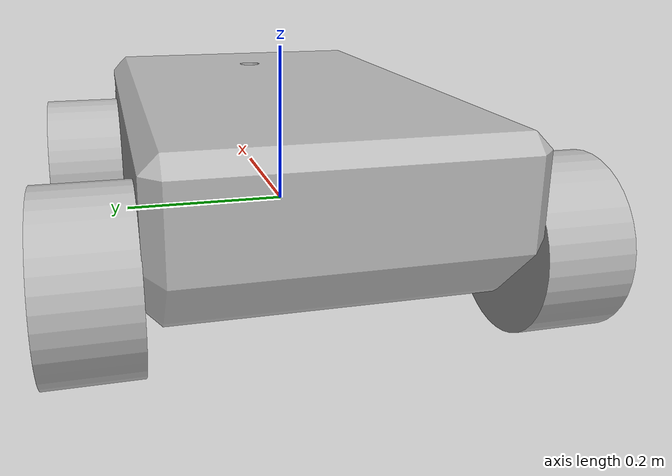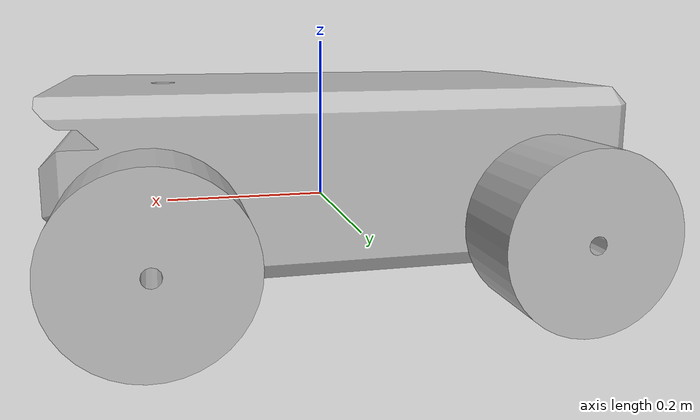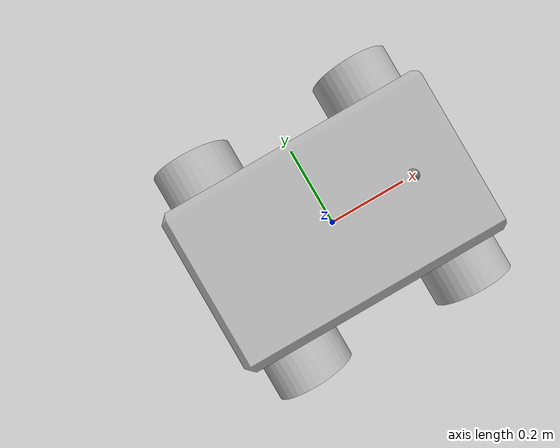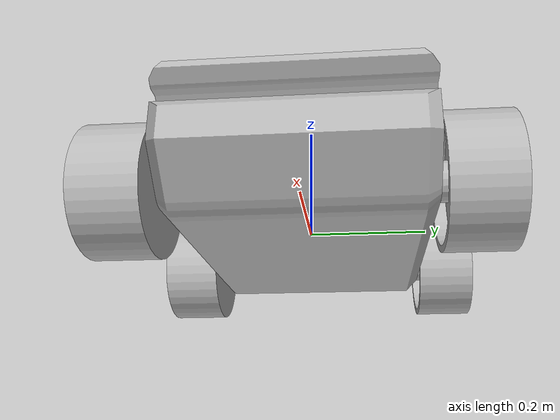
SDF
<sdf version='1.7'>
  <model name='robot_base'>
    <link name='base_link'>
      <inertial>
        <pose>0.003095 0 0.053305 0 -0 0</pose>
        <mass>47.873</mass>
        <inertia>
          <ixx>0.774277</ixx>
          <ixy>-1.03782e-10</ixy>
          <ixz>0.00763014</ixz>
          <iyy>1.64933</iyy>
          <iyz>1.09578e-12</iyz>
          <izz>2.12393</izz>
        </inertia>
      </inertial>
      <collision name='base_link_collision'>
        <pose>0 0 0 1.5708 -0 3.14</pose>
        <geometry>
          <mesh>
            <scale>1 1 1</scale>
            <uri>model://robot_description/meshes/robot_base.stl</uri>
          </mesh>
        </geometry>
      </collision>
      <visual name='base_link_visual'>
        <pose>0 0 0 1.5708 -0 3.14</pose>
        <geometry>
          <mesh>
            <scale>1 1 1</scale>
            <uri>model://robot_description/meshes/robot_base.stl</uri>
          </mesh>
        </geometry>
      </visual>
    </link>
    <joint name='front_left_wheel_joint' type='revolute'>
      <pose relative_to='base_link'>0.22 0.25 0 0 -0 0</pose>
      <parent>base_link</parent>
      <child>front_left_wheel</child>
      <axis>
        <xyz>0 1 0</xyz>
        <limit>
          <lower>-1e+16</lower>
          <upper>1e+16</upper>
        </limit>
        <dynamics>
          <spring_reference>0</spring_reference>
          <spring_stiffness>0</spring_stiffness>
        </dynamics>
      </axis>
    </joint>
    <link name='front_left_wheel'>
      <pose relative_to='front_left_wheel_joint'>0 0 0 0 -0 0</pose>
      <inertial>
        <pose>-0 0.006809 -0 0 -0 0</pose>
        <mass>2.6578</mass>
        <inertia>
          <ixx>0.00856503</ixx>
          <ixy>1.50741e-19</ixy>
          <ixz>-4.7815e-19</ixz>
          <iyy>0.0136706</iyy>
          <iyz>-2.68136e-19</iyz>
          <izz>0.00856503</izz>
        </inertia>
      </inertial>
      <collision name='front_left_wheel_collision'>
        <pose>0 0 0 1.5708 -0 0</pose>
        <geometry>
          <mesh>
            <scale>1 1 1</scale>
            <uri>model://robot_description/meshes/wheel.stl</uri>
          </mesh>
        </geometry>
        <surface>
          <contact>
            <ode>
              <kp>1e+07</kp>
              <kd>1</kd>
            </ode>
          </contact>
          <friction>
            <ode>
              <mu>1</mu>
              <mu2>1</mu2>
              <fdir1>1 0 0</fdir1>
            </ode>
          </friction>
        </surface>
      </collision>
      <visual name='front_left_wheel_visual'>
        <pose>0 0 0 1.5708 -0 0</pose>
        <geometry>
          <mesh>
            <scale>1 1 1</scale>
            <uri>model://robot_description/meshes/wheel.stl</uri>
          </mesh>
        </geometry>
      </visual>
    </link>
    <joint name='front_right_wheel_joint' type='revolute'>
      <pose relative_to='base_link'>0.22 -0.25 0 0 -0 0</pose>
      <parent>base_link</parent>
      <child>front_right_wheel</child>
      <axis>
        <xyz>0 1 0</xyz>
        <limit>
          <lower>-1e+16</lower>
          <upper>1e+16</upper>
        </limit>
        <dynamics>
          <spring_reference>0</spring_reference>
          <spring_stiffness>0</spring_stiffness>
        </dynamics>
      </axis>
    </joint>
    <link name='front_right_wheel'>
      <pose relative_to='front_right_wheel_joint'>0 0 0 0 -0 0</pose>
      <inertial>
        <pose>-0 0.006809 -0 0 -0 0</pose>
        <mass>2.6578</mass>
        <inertia>
          <ixx>0.00856503</ixx>
          <ixy>1.50741e-19</ixy>
          <ixz>-4.7815e-19</ixz>
          <iyy>0.0136706</iyy>
          <iyz>-2.68136e-19</iyz>
          <izz>0.00856503</izz>
        </inertia>
      </inertial>
      <collision name='front_right_wheel_collision'>
        <pose>0 0 0 1.5708 -0 0</pose>
        <geometry>
          <mesh>
            <scale>1 1 1</scale>
            <uri>model://robot_description/meshes/wheel.stl</uri>
          </mesh>
        </geometry>
        <surface>
          <contact>
            <ode>
              <kp>1e+07</kp>
              <kd>1</kd>
            </ode>
          </contact>
          <friction>
            <ode>
              <mu>1</mu>
              <mu2>1</mu2>
              <fdir1>1 0 0</fdir1>
            </ode>
          </friction>
        </surface>
      </collision>
      <visual name='front_right_wheel_visual'>
        <pose>0 0 0 1.5708 -0 0</pose>
        <geometry>
          <mesh>
            <scale>1 1 1</scale>
            <uri>model://robot_description/meshes/wheel.stl</uri>
          </mesh>
        </geometry>
      </visual>
    </link>
    <joint name='rear_left_wheel_joint' type='revolute'>
      <pose relative_to='base_link'>-0.22 0.25 0 0 -0 0</pose>
      <parent>base_link</parent>
      <child>rear_left_wheel</child>
      <axis>
        <xyz>0 1 0</xyz>
        <limit>
          <lower>-1e+16</lower>
          <upper>1e+16</upper>
        </limit>
        <dynamics>
          <spring_reference>0</spring_reference>
          <spring_stiffness>0</spring_stiffness>
        </dynamics>
      </axis>
    </joint>
    <link name='rear_left_wheel'>
      <pose relative_to='rear_left_wheel_joint'>0 0 0 0 -0 0</pose>
      <inertial>
        <pose>-0 0.006809 -0 0 -0 0</pose>
        <mass>2.6578</mass>
        <inertia>
          <ixx>0.00856503</ixx>
          <ixy>1.50741e-19</ixy>
          <ixz>-4.7815e-19</ixz>
          <iyy>0.0136706</iyy>
          <iyz>-2.68136e-19</iyz>
          <izz>0.00856503</izz>
        </inertia>
      </inertial>
      <collision name='rear_left_wheel_collision'>
        <pose>0 0 0 1.5708 -0 0</pose>
        <geometry>
          <mesh>
            <scale>1 1 1</scale>
            <uri>model://robot_description/meshes/wheel.stl</uri>
          </mesh>
        </geometry>
        <surface>
          <contact>
            <ode>
              <kp>1e+07</kp>
              <kd>1</kd>
            </ode>
          </contact>
          <friction>
            <ode>
              <mu>1</mu>
              <mu2>1</mu2>
              <fdir1>1 0 0</fdir1>
            </ode>
          </friction>
        </surface>
      </collision>
      <visual name='rear_left_wheel_visual'>
        <pose>0 0 0 1.5708 -0 0</pose>
        <geometry>
          <mesh>
            <scale>1 1 1</scale>
            <uri>model://robot_description/meshes/wheel.stl</uri>
          </mesh>
        </geometry>
      </visual>
    </link>
    <joint name='rear_right_wheel_joint' type='revolute'>
      <pose relative_to='base_link'>-0.22 -0.25 0 0 -0 0</pose>
      <parent>base_link</parent>
      <child>rear_right_wheel</child>
      <axis>
        <xyz>0 1 0</xyz>
        <limit>
          <lower>-1e+16</lower>
          <upper>1e+16</upper>
        </limit>
        <dynamics>
          <spring_reference>0</spring_reference>
          <spring_stiffness>0</spring_stiffness>
        </dynamics>
      </axis>
    </joint>
    <link name='rear_right_wheel'>
      <pose relative_to='rear_right_wheel_joint'>0 0 0 0 -0 0</pose>
      <inertial>
        <pose>-0 0.006809 -0 0 -0 0</pose>
        <mass>2.6578</mass>
        <inertia>
          <ixx>0.00856503</ixx>
          <ixy>1.50741e-19</ixy>
          <ixz>-4.7815e-19</ixz>
          <iyy>0.0136706</iyy>
          <iyz>-2.68136e-19</iyz>
          <izz>0.00856503</izz>
        </inertia>
      </inertial>
      <collision name='rear_right_wheel_collision'>
        <pose>0 0 0 1.5708 -0 0</pose>
        <geometry>
          <mesh>
            <scale>1 1 1</scale>
            <uri>model://robot_description/meshes/wheel.stl</uri>
          </mesh>
        </geometry>
      </collision>
      <visual name='rear_right_wheel_visual'>
        <pose>0 0 0 1.5708 -0 0</pose>
        <geometry>
          <mesh>
            <scale>1 1 1</scale>
            <uri>model://robot_description/meshes/wheel.stl</uri>
          </mesh>
        </geometry>
      </visual>
    </link>
    <plugin name='gazebo_ros_control' filename='libgazebo_ros_control.so'>
      <controlPeriod>0.001</controlPeriod>
      <legacyModeNS>0</legacyModeNS>
    </plugin>
    <static>0</static>
    <plugin name='diff_drive_controller' filename='libgazebo_ros_diff_drive.so'>
      <legacyMode>0</legacyMode>
      <alwaysOn>1</alwaysOn>
      <updateRate>1000.0</updateRate>
      <leftJoint>front_left_wheel_joint, rear_left_wheel_joint</leftJoint>
      <rightJoint>front_right_wheel_joint, rear_right_wheel_joint</rightJoint>
      <wheelSeparation>0.5</wheelSeparation>
      <wheelDiameter>0.2</wheelDiameter>
      <wheelTorque>10</wheelTorque>
      <publishTf>1</publishTf>
      <odometryFrame>map</odometryFrame>
      <commandTopic>cmd_vel</commandTopic>
      <odometryTopic>odom</odometryTopic>
      <robotBaseFrame>base_link</robotBaseFrame>
      <wheelAcceleration>2.8</wheelAcceleration>
      <publishWheelJointState>1</publishWheelJointState>
      <publishWheelTF>0</publishWheelTF>
      <odometrySource>world</odometrySource>
      <rosDebugLevel>Debug</rosDebugLevel>
    </plugin>
  </model>
</sdf>
